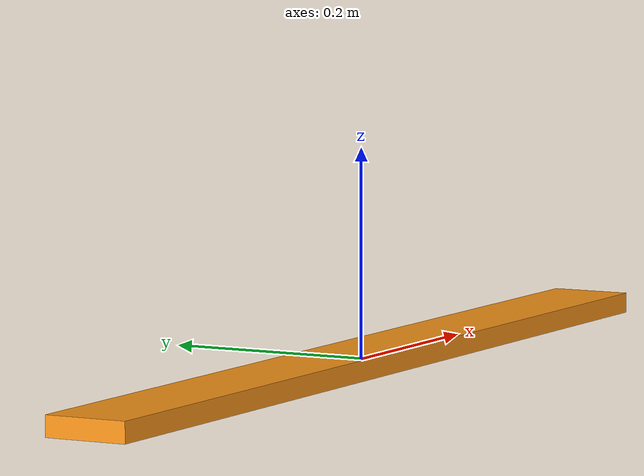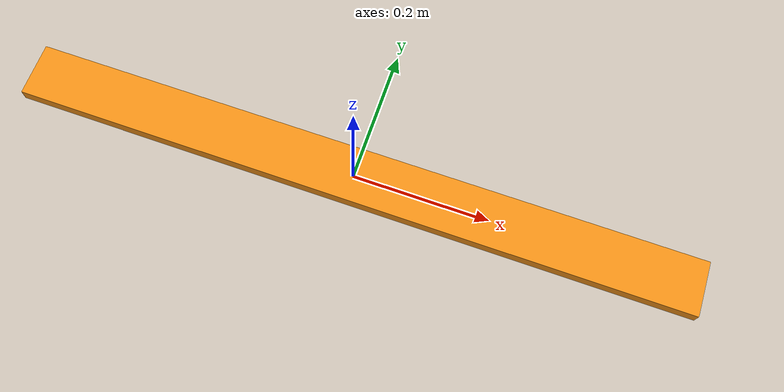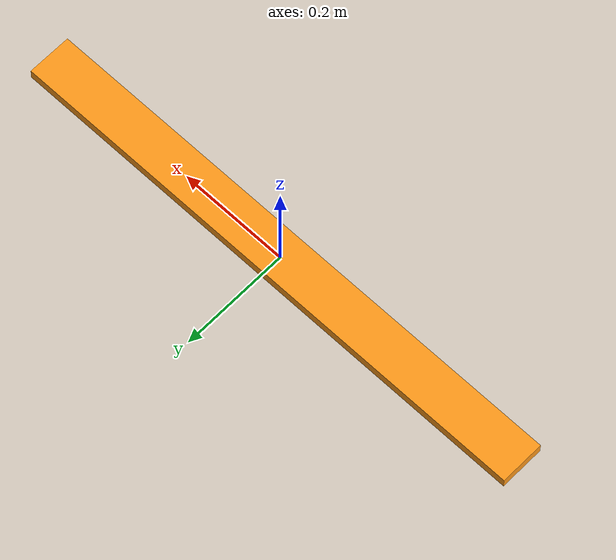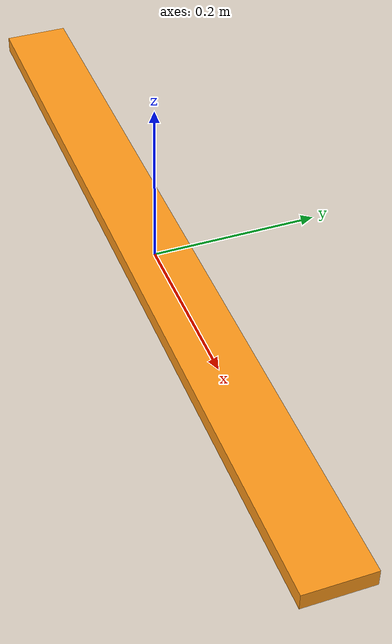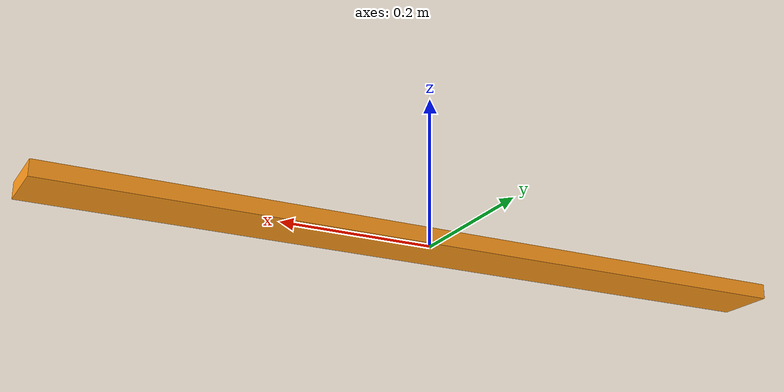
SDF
<?xml version="1.0"?>
<sdf version="1.8">
  <model name="qualification_start_line">
    <static>true</static>
    <link name="marker">
      <visual name="visual">
        <geometry>
          <box>
            <size>1.0 0.08 0.02</size>
          </box>
        </geometry>
        <material>
          <ambient>1 0.6 0.1 1</ambient>
          <diffuse>1 0.6 0.1 1</diffuse>
        </material>
      </visual>
    </link>
  </model>
</sdf>
